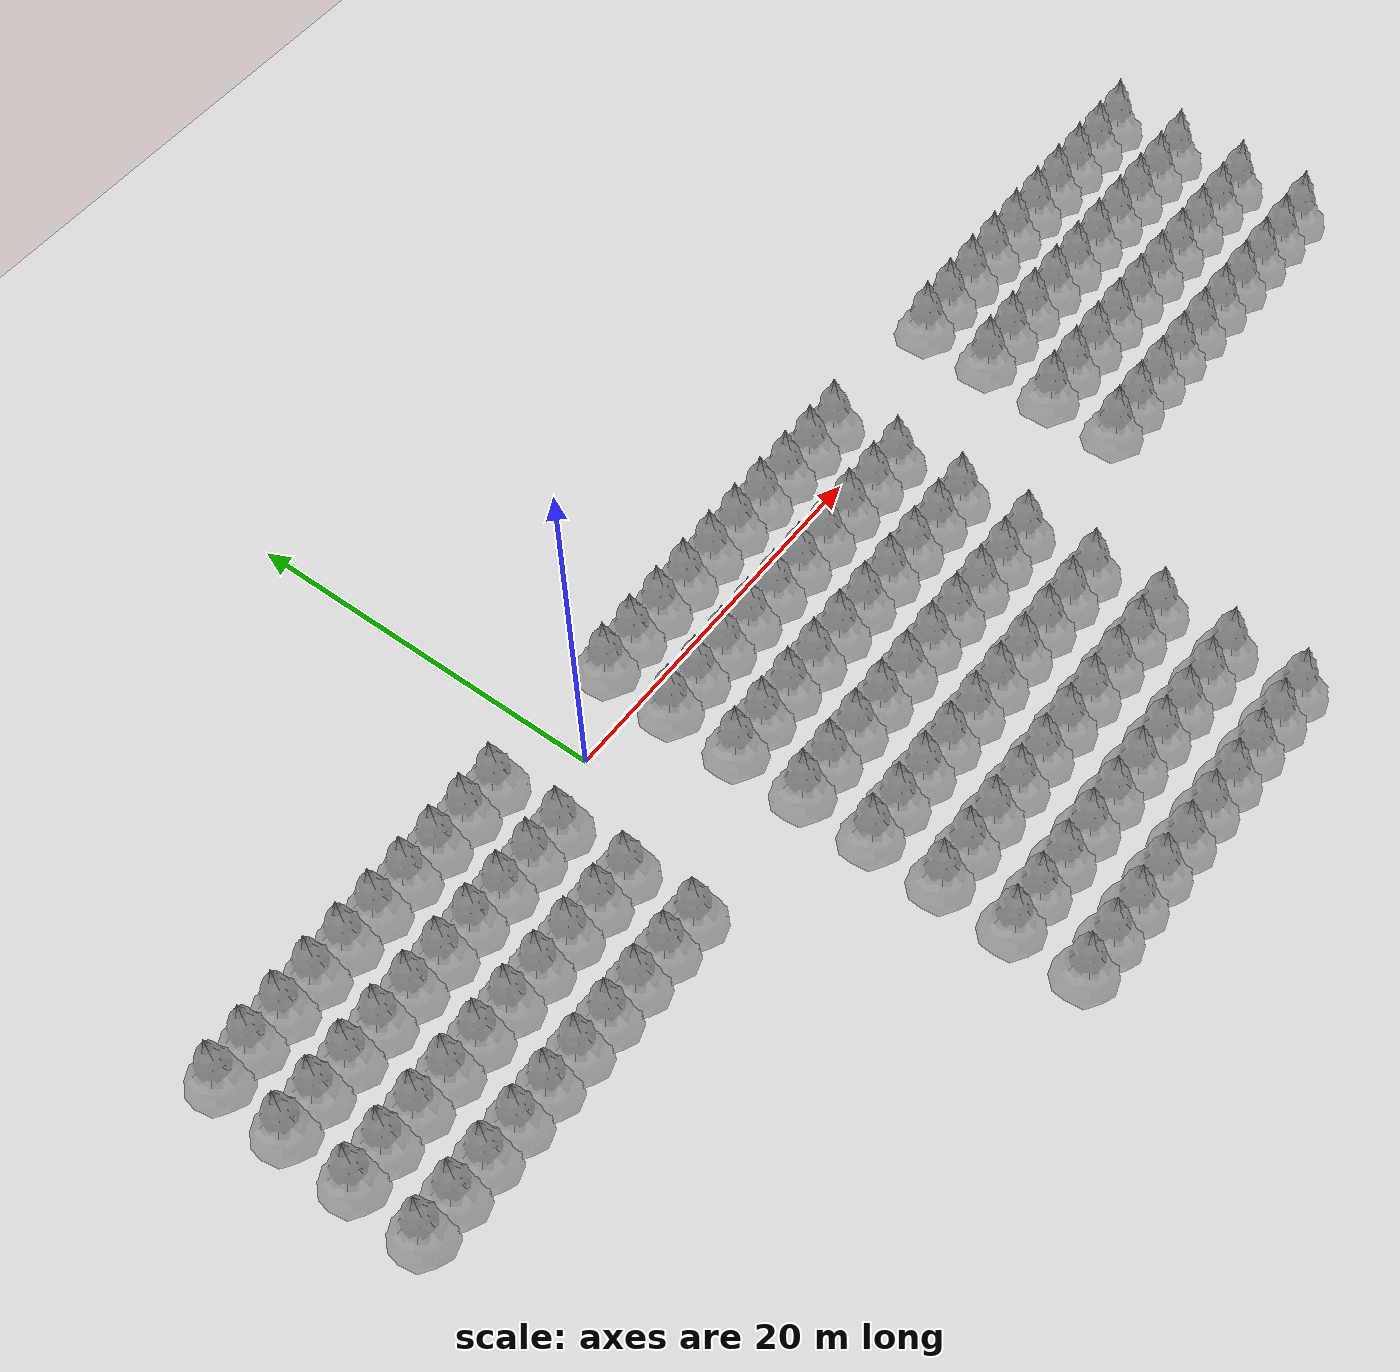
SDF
<?xml version="1.0" ?>
<sdf version='1.7'>
  <world name='default'>
        <!-- A global light source -->
    <include>
      <uri>model://sun</uri>
    </include>
    <!-- A ground plane -->
    <include>
      <uri>model://ground_plane</uri>
    </include>

    <spherical_coordinates>
      <surface_model>EARTH_WGS84</surface_model>
      <world_frame_orientation>ENU</world_frame_orientation>
      <latitude_deg>42.1617155</latitude_deg>
      <longitude_deg>3.0929984</longitude_deg>
      <elevation>0</elevation>
      <heading_deg>0.0</heading_deg>
    </spherical_coordinates>

    <!-- Relaxing physics update_rate (original 1000) and max_step_size (0.001) -->
    <physics type='ode'>
      <max_step_size>0.004</max_step_size>
      <real_time_factor>1</real_time_factor>
      <real_time_update_rate>250</real_time_update_rate>
    </physics>
    <include>
      <name>ROW_V0_H0</name>
      <uri>model://crop_row</uri>
      <pose>-22.0 1.9 0 0 0 0</pose>
    </include>
    <include>
      <name>ROW_V0_H1</name>
      <uri>model://crop_row</uri>
      <pose>-22.0 -1.9 0 0 0 0</pose>
    </include>
    <include>
      <name>ROW_V0_H2</name>
      <uri>model://crop_row</uri>
      <pose>-22.0 -5.7 0 0 0 0</pose>
    </include>
    <include>
      <name>ROW_V0_H3</name>
      <uri>model://crop_row</uri>
      <pose>-22.0 -9.5 0 0 0 0</pose>
    </include>

    <include>
      <name>ROW_V1_H0</name>
      <uri>model://crop_row</uri>
      <pose>4.0 1.9 0 0 0 0</pose>
    </include>
    <include>
      <name>ROW_V1_H1</name>
      <uri>model://crop_row</uri>
      <pose>4.0 -1.9 0 0 0 0</pose>
    </include>
    <include>
      <name>ROW_V1_H2</name>
      <uri>model://crop_row</uri>
      <pose>4.0 -5.7 0 0 0 0</pose>
    </include>
    <include>
      <name>ROW_V1_H3</name>
      <uri>model://crop_row</uri>
      <pose>4.0 -9.5 0 0 0 0</pose>
    </include>

    <include>
      <name>ROW_V1_H4</name>
      <uri>model://crop_row</uri>
      <pose>4.0 -13.3 0 0 0 0</pose>
    </include>
    <include>
      <name>ROW_V1_H5</name>
      <uri>model://crop_row</uri>
      <pose>4.0 -17.1 0 0 0 0</pose>
    </include>
    <include>
      <name>ROW_V1_H6</name>
      <uri>model://crop_row</uri>
      <pose>4.0 -20.9 0 0 0 0</pose>
    </include>
    <include>
      <name>ROW_V1_H7</name>
      <uri>model://crop_row</uri>
      <pose>4.0 -24.7 0 0 0 0</pose>
    </include>

    <include>
      <name>ROW_V2_H0</name>
      <uri>model://crop_row</uri>
      <pose>30.0 1.9 0 0 0 0</pose>
    </include>
    <include>
      <name>ROW_V2_H1</name>
      <uri>model://crop_row</uri>
      <pose>30.0 -1.9 0 0 0 0</pose>
    </include>
    <include>
      <name>ROW_V2_H2</name>
      <uri>model://crop_row</uri>
      <pose>30.0 -5.7 0 0 0 0</pose>
    </include>
    <include>
      <name>ROW_V2_H3</name>
      <uri>model://crop_row</uri>
      <pose>30.0 -9.5 0 0 0 0</pose>
    </include>

  </world>
</sdf>

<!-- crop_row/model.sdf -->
<sdf version="1.6">
  <model name="crop_row">
    <static>true</static>
    <include>
      <name>TREE_0</name>
      <uri>model://pine_tree</uri>
      <pose>0 0 0 0 0 0</pose>
    </include>
    <include>
      <name>TREE_1</name>
      <uri>model://pine_tree</uri>
      <pose>2 0 0 0 0 0</pose>
    </include>
    <include>
      <name>TREE_2</name>
      <uri>model://pine_tree</uri>
      <pose>4 0 0 0 0 0</pose>
    </include>
    <include>
      <name>TREE_3</name>
      <uri>model://pine_tree</uri>
      <pose>6 0 0 0 0 0</pose>
    </include>
    <include>
      <name>TREE_4</name>
      <uri>model://pine_tree</uri>
      <pose>8 0 0 0 0 0</pose>
    </include>
    <include>
      <name>TREE_5</name>
      <uri>model://pine_tree</uri>
      <pose>10 0 0 0 0 0</pose>
    </include>
    <include>
      <name>TREE_6</name>
      <uri>model://pine_tree</uri>
      <pose>12 0 0 0 0 0</pose>
    </include>
    <include>
      <name>TREE_7</name>
      <uri>model://pine_tree</uri>
      <pose>14 0 0 0 0 0</pose>
    </include>
    <include>
      <name>TREE_8</name>
      <uri>model://pine_tree</uri>
      <pose>16 0 0 0 0 0</pose>
    </include>
    <include>
      <name>TREE_9</name>
      <uri>model://pine_tree</uri>
      <pose>18 0 0 0 0 0</pose>
    </include>
  </model>
</sdf>

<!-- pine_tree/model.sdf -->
<sdf version="1.6">
  <model name="pine_tree">
    <static>true</static>
    <link name="link">
      <collision name='collision'>
        <pose>0 0 2.0 0 0 0</pose>
        <geometry>
          <cylinder>
            <radius>0.15</radius>
            <length>4.0</length>
          </cylinder>
        </geometry>
        <max_contacts>10</max_contacts>
        <surface>
          <contact>
            <ode/>
          </contact>
          <bounce/>
          <friction>
            <torsional>
              <ode/>
            </torsional>
            <ode/>
          </friction>
        </surface>
      </collision>
      <visual name="branch">
        <geometry>
          <mesh>
            <uri>model://pine_tree/meshes/pine_tree.dae</uri>
            <submesh>
              <name>Branch</name>
            </submesh>
          </mesh>
        </geometry>
        <material>
          <script>
            <uri>model://pine_tree/materials/scripts/</uri>
            <uri>model://pine_tree/materials/textures/</uri>
            <name>PineTree/Branch</name>
          </script>
        </material>
      </visual>
      <visual name="bark">
        <geometry>
          <mesh>
            <uri>model://pine_tree/meshes/pine_tree.dae</uri>
            <submesh>
              <name>Bark</name>
            </submesh>
          </mesh>
        </geometry>
        <material>
          <script>
            <uri>model://pine_tree/materials/scripts/</uri>
            <uri>model://pine_tree/materials/textures/</uri>
            <name>PineTree/Bark</name>
          </script>
        </material>
      </visual>
    </link>
  </model>
</sdf>
